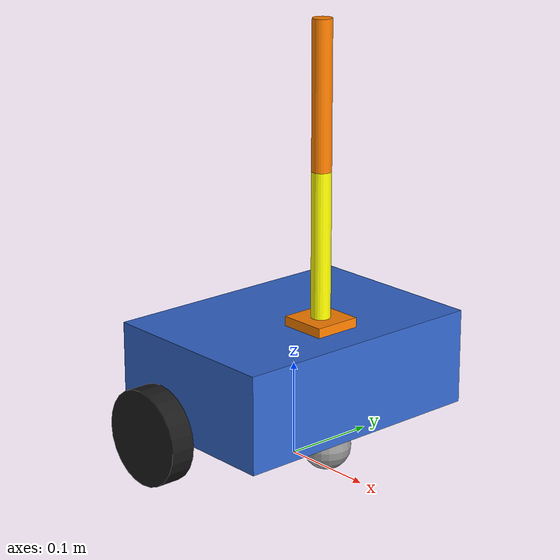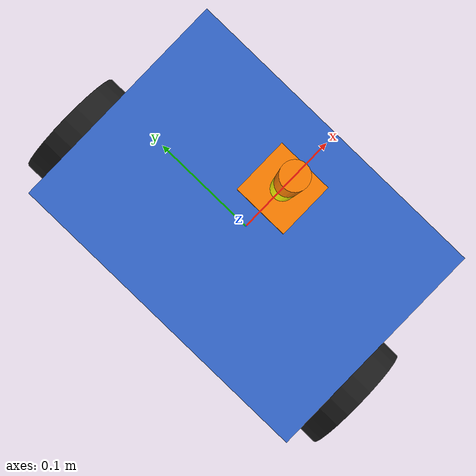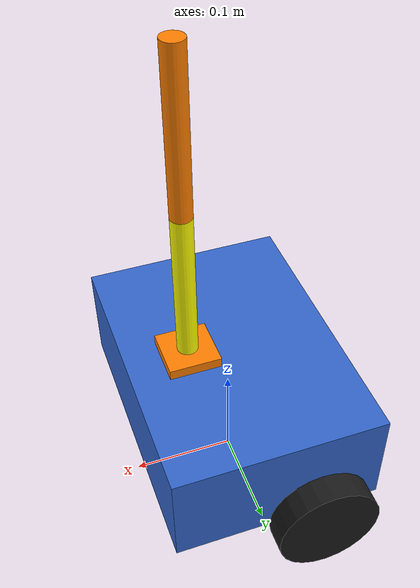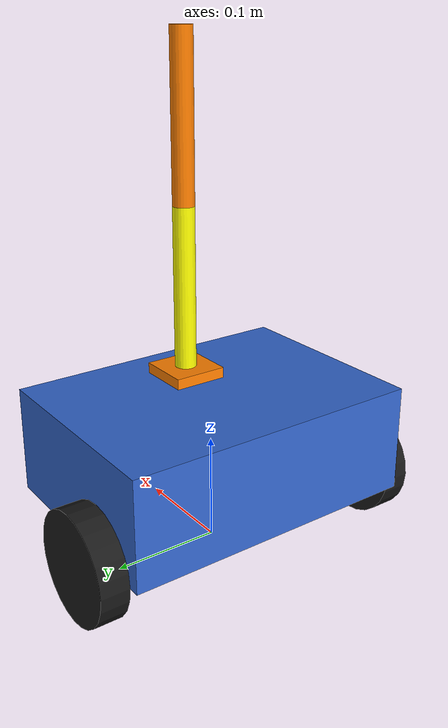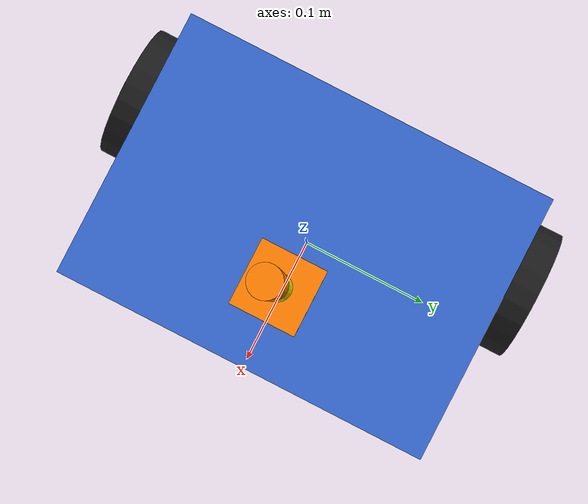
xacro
<?xml version="1.0"?>
<robot name="mobile-manipulator" xmlns:xacro="http://www.ros.org/wiki/xacro">

    <xacro:include filename="$(find mobile_manipulator_description)/urdf/properties.xacro" />
    <xacro:include filename="$(find mobile_manipulator_description)/urdf/inertia.xacro" />

    <!-- LINKS -->
    <link name="base_footprint" />
    <link name="base_link">
        <visual>
            <origin xyz="0 0 ${chassis_height/2}" rpy="0 0 0" />
            <geometry>
                <box size="${chassis_length} ${chassis_width} ${chassis_height}" />
            </geometry>
            <material name="blue_acrylic" />
        </visual>
        <collision>
            <origin xyz="0 0 ${chassis_height/2}" rpy="0 0 0" />
            <geometry>
                <box size="${chassis_length} ${chassis_width} ${chassis_height}" />
            </geometry>
        </collision>
        <xacro:box_inertia m="${chassis_mass}"
                            x="${chassis_length}"
                            y="${chassis_width}"
                            z="${chassis_height}" />
    </link>

    <link name="left_wheel_link">
        <visual>
            <origin xyz="0 0 0" rpy="${pi/2} 0 0" />
            <geometry>
                <cylinder radius="${wheel_radius}" length="${wheel_width}" />
            </geometry>
            <material name="black_rubber" />
        </visual>
        <collision>
            <origin xyz="0 0 0" rpy="${pi/2} 0 0" />
            <geometry>
                <cylinder radius="${wheel_radius}" length="${wheel_width}" />
            </geometry>
        </collision>
        <xacro:wheel_inertia m="${wheel_mass}" r="${wheel_radius}" h="${wheel_width}" />
    </link>

    <link name="right_wheel_link">
        <visual>
            <origin xyz="0 0 0" rpy="${pi/2} 0 0" />
            <geometry>
                <cylinder radius="${wheel_radius}" length="${wheel_width}" />
            </geometry>
            <material name="black_rubber" />
        </visual>
        <collision>
            <origin xyz="0 0 0" rpy="${pi/2} 0 0" />
            <geometry>
                <cylinder radius="${wheel_radius}" length="${wheel_width}" />
            </geometry>
        </collision>
        <xacro:wheel_inertia m="${wheel_mass}" r="${wheel_radius}" h="${wheel_width}" />
    </link>

    <link name="caster_wheel_link">
        <visual>
            <origin xyz="0 0 0" rpy="0 0 0" />
            <geometry>
                <sphere radius="${caster_radius}" />
            </geometry>
            <material name="grey_caster" />
        </visual>
        <collision>
            <origin xyz="0 0 0" rpy="0 0 0" />
            <geometry>
                <sphere radius="${caster_radius}" />
            </geometry>
        </collision>
        <xacro:sphere_inertia m="${caster_mass}" r="${caster_radius}" />
    </link>

    <!-- JOINTS -->
    <joint name="base_to_footprint" type="fixed">
        <parent link="base_footprint"/>
        <child link="base_link"/>
        <origin xyz="0 0 ${wheel_radius}" rpy="0 0 0"/>
    </joint>

    <joint name="base_to_left_wheel_joint" type="continuous">
        <parent link="base_link"/>
        <child link="left_wheel_link"/>
        <origin xyz="${-chassis_length/4 + 0.01} ${chassis_width/2+wheel_width/2} 0" rpy="0 0 0"/>
        <axis xyz="0 1 0"/>
    </joint>

    <joint name="base_to_right_wheel_joint" type="continuous">
        <parent link="base_link"/>
        <child link="right_wheel_link"/>
        <origin xyz="${-chassis_length/4 + 0.01} ${-chassis_width/2-wheel_width/2} 0" rpy="0 0 0"/>
        <axis xyz="0 1 0"/>
    </joint>

    <joint name="base_to_caster_wheel_joint" type="fixed">
        <parent link="base_link"/>
        <child link="caster_wheel_link"/>
        <origin xyz="${chassis_length/4} 0 ${-caster_radius}" rpy="0 0 0"/>
    </joint>

    <!-- Robotic Arm -->
    <xacro:include filename="$(find mobile_manipulator_description)/urdf/robotic_arm.xacro" />

    <!-- GAZEBO SETUP: Plugin Configuration -->
    <xacro:include filename="$(find mobile_manipulator_description)/urdf/gazebo_setup.xacro" />
    <!-- ROS2 Control SETUP: -->
    <xacro:include filename="$(find mobile_manipulator_description)/urdf/ros2_control.xacro" />
</robot>

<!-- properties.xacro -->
<robot xmlns:xacro="http://www.ros.org/wiki/xacro">
<!-- PROPERTIES -->
    <!-- Chassis box dimensions -->
    <xacro:property name="chassis_length"   value="0.20"/>  <!-- X: front to back -->
    <xacro:property name="chassis_width"    value="0.28"/>  <!-- Y: left to right -->
    <xacro:property name="chassis_height"   value="0.10"/>  <!-- Z: bottom to top -->

    <!-- Wheel dimensions -->
    <xacro:property name="wheel_radius"     value="0.050"/>
    <xacro:property name="wheel_width"      value="0.026"/>
    <xacro:property name="wheel_separation" value="0.306"/>

    <!-- Caster wheel -->
    <xacro:property name="caster_radius"    value="0.025"/>

    <!-- Robotic Arm -->
    <xacro:property name="arm_base_length" value="0.05"/>
    <xacro:property name="arm_base_height" value="0.01"/>
    <xacro:property name="arm_link_length" value="0.15"/>
    <xacro:property name="arm_link_radius" value="0.01"/>

    <!-- Mass values (kg) -->
    <xacro:property name="chassis_mass"     value="3"/>
    <xacro:property name="wheel_mass"       value="0.12"/>
    <xacro:property name="caster_mass"      value="0.02"/>

<!-- MATERIALS -->
    <material name="blue_acrylic">
        <color rgba="0.2 0.4 0.8 1.0"/>
    </material>

    <material name="black_rubber">
        <color rgba="0.1 0.1 0.1 1.0"/>
    </material>

    <material name="grey_caster">
        <color rgba="0.6 0.6 0.6 1.0"/>
    </material>

    <material name="orange">
        <color rgba="1.0 0.5 0.0 1.0"/>
    </material>

    <material name="yellow">
        <color rgba="1.0 1.0 0.0 1.0"/>
    </material>

</robot>

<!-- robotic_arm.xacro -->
<robot xmlns:xacro="http://www.ros.org/wiki/xacro">

    <!-- LINKS -->
    <link name="arm_base_link">
        <visual>
            <origin xyz="0 0 0" rpy="0 0 0" />
            <geometry>
                <box size="${arm_base_length} ${arm_base_length} ${arm_base_height}" />
            </geometry>
            <material name="orange" />
        </visual>
        <collision>
            <origin xyz="0 0 0" rpy="0 0 0" />
            <geometry>
                <box size="${arm_base_length} ${arm_base_length} ${arm_base_height}" />
            </geometry>
        </collision>
        <xacro:box_inertia m="0.5" x="${arm_base_length}" y="${arm_base_length}" z="${arm_base_height}" />
    </link>

    <link name="forearm_link">
        <visual>
            <origin xyz="0 0 ${arm_link_length/2}" rpy="0 0 0" />
            <geometry>
                <cylinder radius="${arm_link_radius}" length="${arm_link_length}" />
            </geometry>
            <material name="yellow" />
        </visual>
        <collision>
            <origin xyz="0 0 ${arm_link_length/2}" rpy="0 0 0" />
            <geometry>
                <cylinder radius="${arm_link_radius}" length="${arm_link_length}" />
            </geometry>
        </collision>
        <xacro:cylinder_inertia m="0.3" r="${arm_link_radius}" h="${arm_link_length}" />
    </link>

    <link name="hand_link">
        <visual>
            <origin xyz="0 0 ${arm_link_length/2}" rpy="0 0 0" />
            <geometry>
                <cylinder radius="${arm_link_radius}" length="${arm_link_length}" />
            </geometry>
            <material name="orange" />
        </visual>
        <collision>
            <origin xyz="0 0 ${arm_link_length/2}" rpy="0 0 0" />
            <geometry>
                <cylinder radius="${arm_link_radius}" length="${arm_link_length}" />
            </geometry>
        </collision>
        <xacro:cylinder_inertia m="0.3" r="${arm_link_radius}" h="${arm_link_length}" />
    </link>

    <!-- JOINTs -->
    <joint name="base_to_arm_base_joint" type="fixed">
        <parent link="base_link" />
        <child link="arm_base_link" />
        <origin xyz="${chassis_length/5} 0 ${chassis_height+arm_base_height/2}" rpy="0 0 0" />
    </joint>

    <joint name="arm_base_to_forearm_joint" type="revolute">
        <parent link="arm_base_link" />
        <child link="forearm_link" />
        <origin xyz="0 0 ${arm_base_height/2}" rpy="0 0 0" />
        <axis xyz="0 1 0" />
        <limit lower="0" upper="${pi/2}" effort="100" velocity="100" />
    </joint>

    <joint name="forearm_to_hand_joint" type="revolute">
        <parent link="forearm_link" />
        <child link="hand_link" />
        <origin xyz="0 0 ${arm_link_length}" rpy="0 0 0" />
        <axis xyz="0 1 0" />
        <limit lower="0" upper="${pi/2}" effort="100" velocity="100" />
    </joint>
</robot>
